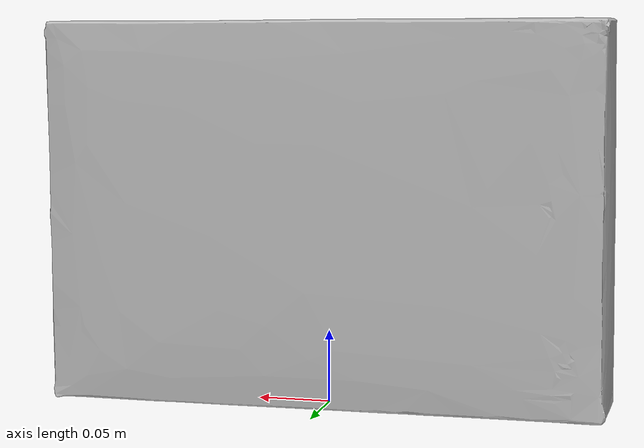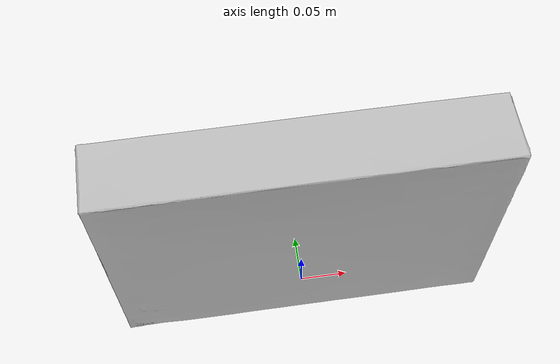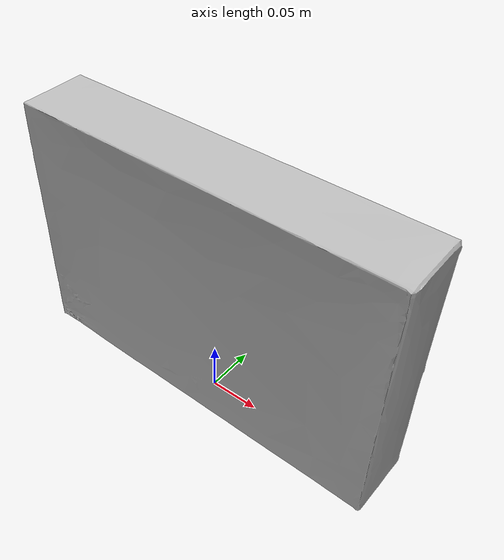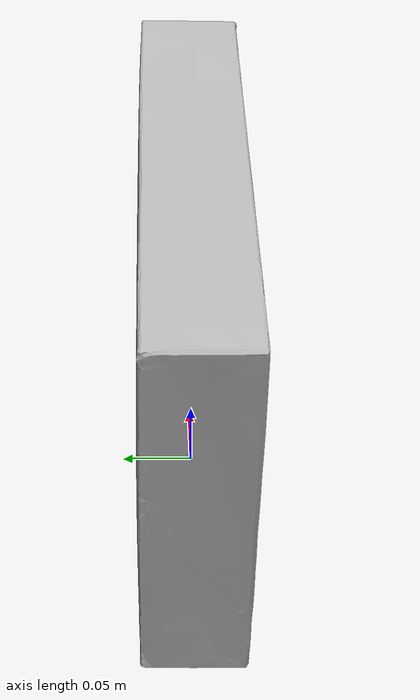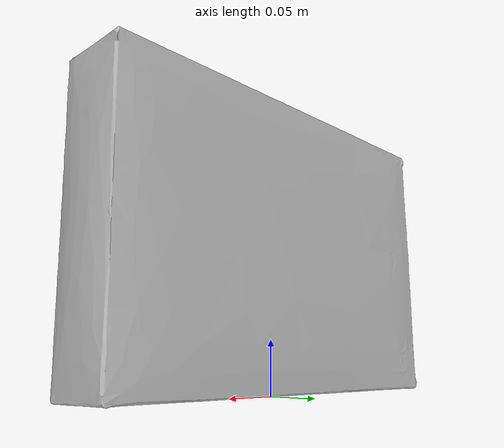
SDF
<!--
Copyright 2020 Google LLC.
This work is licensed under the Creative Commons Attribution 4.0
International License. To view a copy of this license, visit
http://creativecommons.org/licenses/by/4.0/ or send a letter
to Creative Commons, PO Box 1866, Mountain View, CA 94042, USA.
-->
<?xml version="1.0" ?>
<sdf version="1.6">
  <model name="LEGO_Star_Wars_Advent_Calendar">
    <link name="link_0">
      <visual name="visual">
        <geometry>
          <mesh>
            <uri>meshes/model.obj</uri>
          </mesh>
        </geometry>
      </visual>
      <collision name="collision_0">
        <geometry>
          <mesh>
            <uri>meshes/model.obj</uri>
          </mesh>
        </geometry>
      </collision>
    </link>
  </model>
</sdf>
